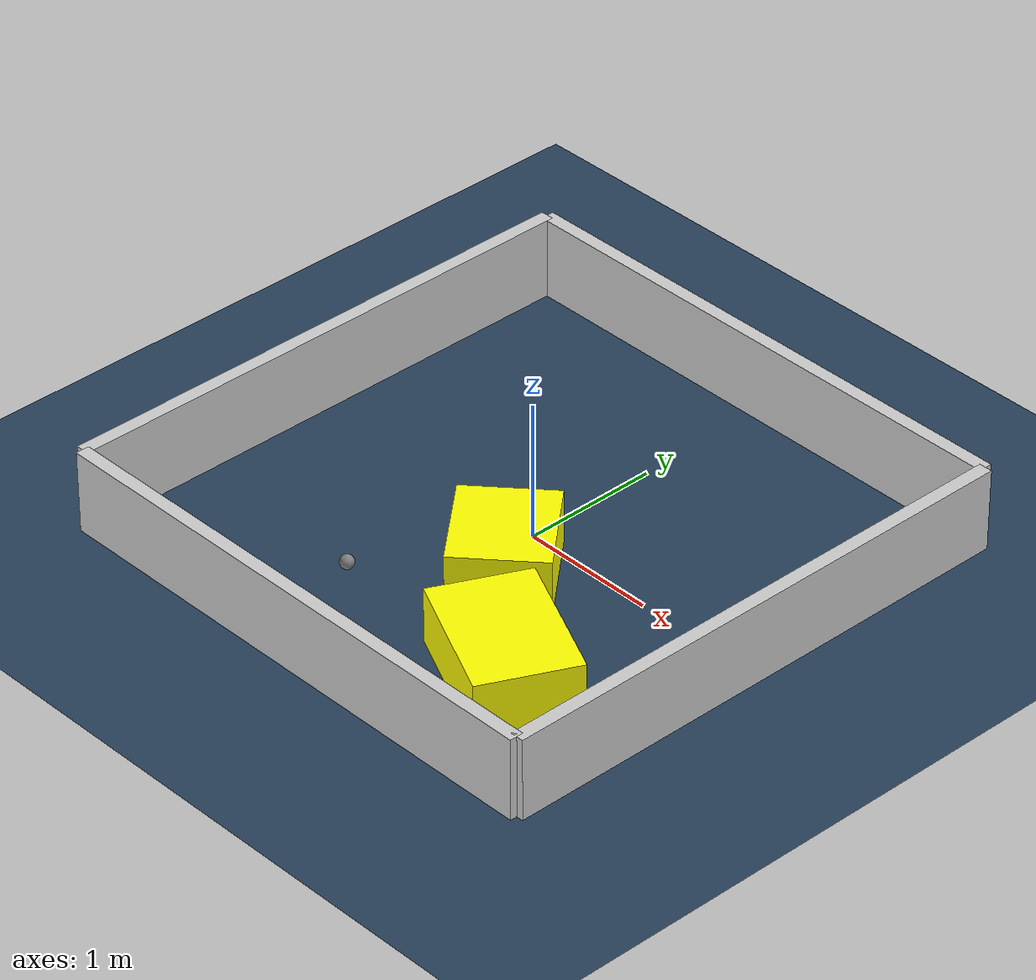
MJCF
<?xml version="1.0" ?>
<mujoco model="generated_environment">
  <option timestep="0.01" integrator="RK4" cone="elliptic"/>
  <default>
    <geom density="1"/>
  </default>
  <asset>
    <texture builtin="gradient" height="3072" rgb1="0.3 0.5 0.7" rgb2="0 0 0" type="skybox" width="512"/>
    <texture builtin="checker" height="300" mark="edge" markrgb="0.8 0.8 0.8" name="groundplane" rgb1="0.2 0.3 0.4" rgb2="0.1 0.2 0.3" type="2d" width="300"/>
    <material name="groundplane" reflectance="0.2" texrepeat="5 5" texture="groundplane" texuniform="true"/>
    <material name="robot" rgba="0.0 1.0 0.0 1"/>
  </asset>
  <worldbody>
    <light dir="0 0 -1" directional="true" pos="0 0 1.5"/>
    <geom condim="4" friction="1.0 0.005 0.001" material="groundplane" name="floor" size="0 0 0.05" type="plane"/>
    <body name="walls">
      <geom name="wall_1" condim="4" pos="-2.0 0.0 0.3" rgba="0.800000011920929 0.800000011920929 0.800000011920929 1.0" size="0.05 2.0 0.3" type="box"/>
      <geom name="wall_2" condim="4" pos="2.0 0.0 0.3" rgba="0.800000011920929 0.800000011920929 0.800000011920929 1.0" size="0.05 2.0 0.3" type="box"/>
      <geom name="wall_3" condim="4" pos="0.0 -2.0 0.3" rgba="0.800000011920929 0.800000011920929 0.800000011920929 1.0" size="2.0 0.05 0.3" type="box"/>
      <geom name="wall_4" condim="4" pos="0.0 2.0 0.3" rgba="0.800000011920929 0.800000011920929 0.800000011920929 1.0" size="2.0 0.05 0.3" type="box"/>
    </body>
    <body name="robot">
      <joint name="joint_x" type="slide" pos="0 0 0" axis="1 0 0"/>
      <joint name="joint_y" type="slide" pos="0 0 0" axis="0 1 0"/>
      <geom name="robot" type="sphere" pos="-0.3910455650420528 -1.2179581668237045 0.2" size="0.05" mass="5." friction="1.0 0.005 0.0001" condim="4"/>
      <site name="sensor_ball"/>
    </body>
    <body name="obstacle_1_movable">
      <geom name="obstacle_1_movable" condim="4" pos="0.18211500150114723 -0.416133741170994 0.2" euler="0 0 41.513991010776095" friction="1.0 0.005 0.001" rgba="1 1 0 1" size="0.3388693137548386 0.38685098263354845 0.2" type="box" mass="0.1"/>
      <joint type="free"/>
    </body>
    <body name="obstacle_2_movable">
      <geom name="obstacle_2_movable" condim="4" pos="0.9652199664274879 -1.1402053541795762 0.2" euler="0 0 154.51973761517092" friction="1.0 0.005 0.001" rgba="1 1 0 1" size="0.5171836534544976 0.359482571297987 0.2" type="box" mass="0.1"/>
      <joint type="free"/>
    </body>
  </worldbody>
  <actuator>
    <motor name="actuator_x" joint="joint_x" gear="1" ctrlrange="-1 1"/>
    <motor name="actuator_y" joint="joint_y" gear="1" ctrlrange="-1 1"/>
  </actuator>
</mujoco>
